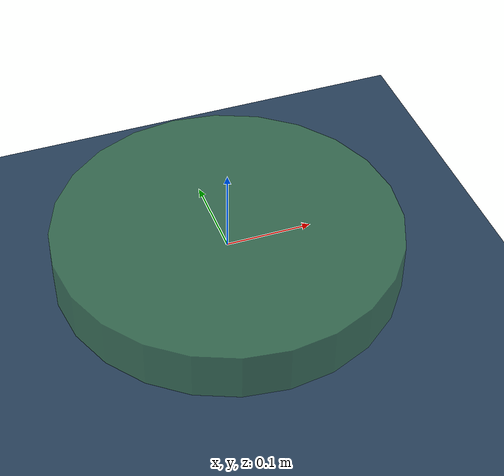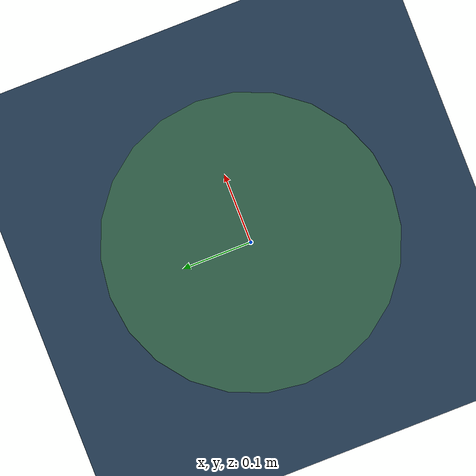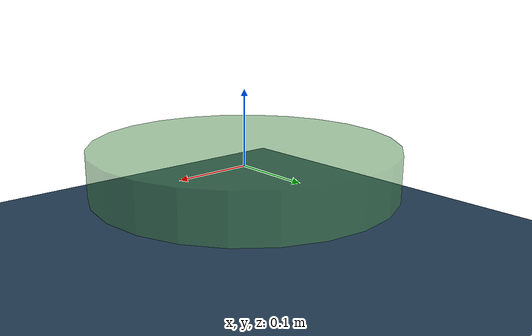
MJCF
<mujoco>
  <compiler inertiafromgeom="true" angle="radian" coordinate="local"/>
  <option timestep="0.01" gravity="0 0 0" iterations="20" integrator="Euler"/>
  <default>
    <joint damping="1" limited='false'/>
    <geom friction=".5 .1 .1" density="1000" margin="0.002" condim="1" contype="2" conaffinity="1"/>
  </default>
  <asset>
    <texture type="2d" name="groundplane" builtin="checker" rgb1="0.2 0.3 0.4" rgb2="0.1 0.2 0.3" width="100" height="100"/>
    <texture name="skybox" type="skybox" builtin="gradient" rgb1=".4 .6 .8" rgb2="0 0 0" width="800" height="800" mark="random" markrgb="1 1 1"/>
    <material name="groundplane" texture="groundplane" texrepeat="20 20"/>
    <material name="target" rgba=".6 .3 .3 1"/>
  </asset>
  <visual>
    <headlight ambient=".4 .4 .4" diffuse=".8 .8 .8" specular="0.1 0.1 0.1"/>
    <map znear=".01"/>
    <quality shadowsize="2048"/>
  </visual>
  <worldbody>
    <geom name="ground" size="40 40 0.25" pos="0 0 -0.1" type="plane" contype="1" conaffinity="0" material="groundplane"/>
    <body name="particle" pos="0 0 0">
      <camera name="egocentric" pos="0 0 0.03" xyaxes="0 1 0 0 0 1" fovy="60"/>
      <geom name="particle_geom" type="cylinder" size="0.2 0.03" rgba="0.3 0.6 0.3 0.5" contype="1" condim="1"/>
      <joint name="ball_x" type="slide" pos="0 0 0" axis="1 0 0"/>
      <joint name="ball_y" type="slide" pos="0 0 0" axis="0 1 0"/>
      <joint name="rotator" type="hinge" pos="0 0 0" axis="0 0 1"/>
    </body>
  </worldbody>
  <actuator>
    <!-- These are just dummy actuators for providing ranges -->
    <motor name="motor_x" joint="ball_x" ctrlrange="-1.0 1.0" ctrllimited="true" gear="100"/>
    <motor name="motor_y" joint="ball_y" ctrlrange="-1.0 1.0" ctrllimited="true" gear="100"/>
    <position name="rotator" joint="rotator" ctrlrange="-0.31416 0.31416" ctrllimited="true" gear="1"/>
  </actuator>
</mujoco>
